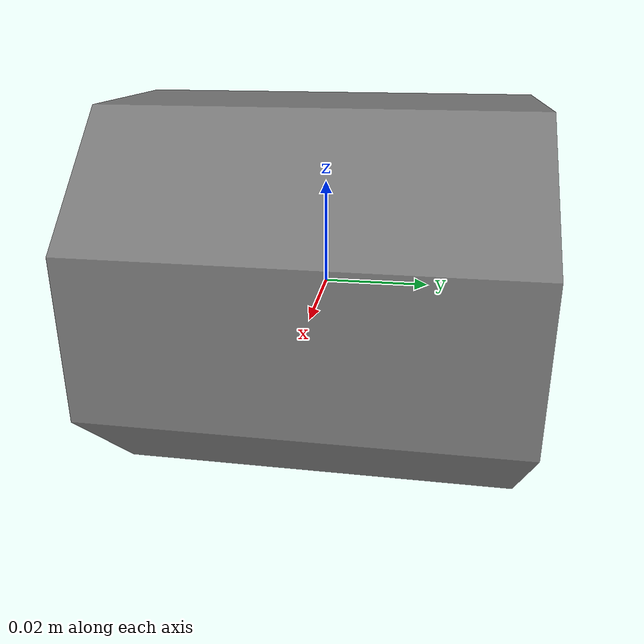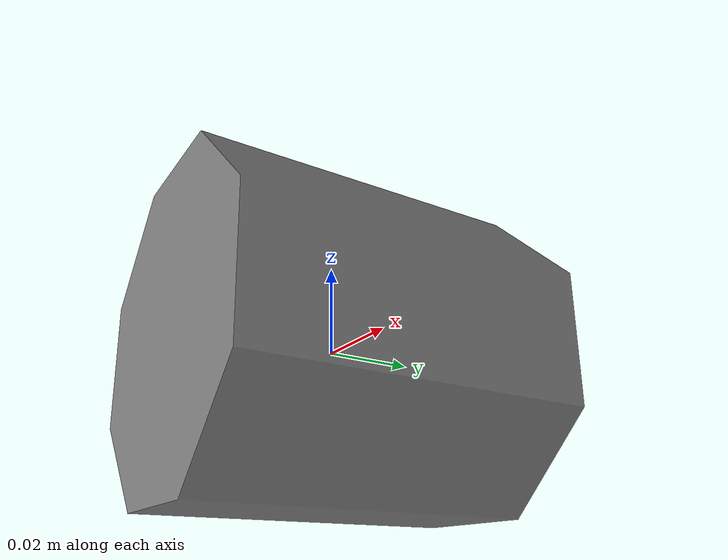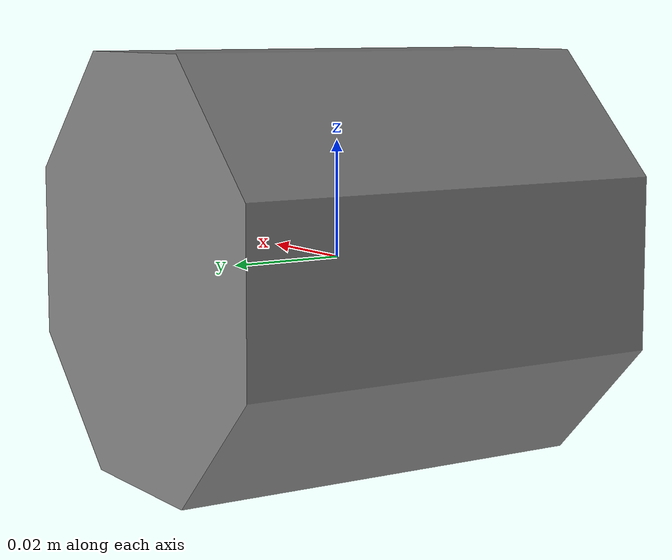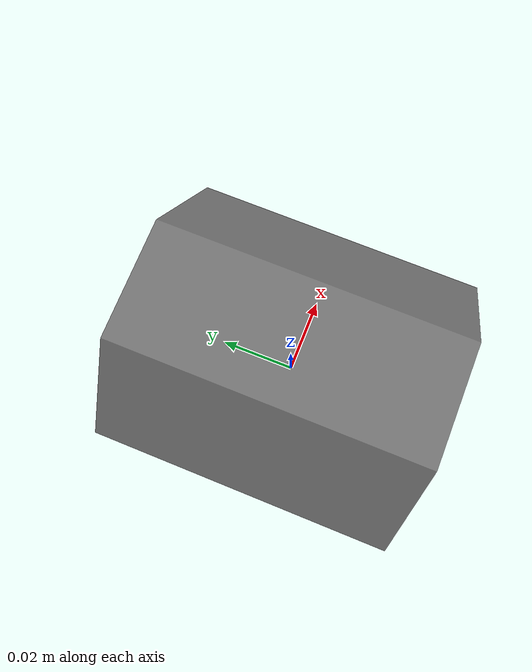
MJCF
<mujoco model="peg-hole">
	<default>
		<default class="visual">
			<geom type="mesh" contype="0" conaffinity="0"/>
		</default>
		<default class="collision">
			<geom type="mesh" rgba="0.5 0.5 0.5 0.0" density="100"/>
		</default>
	</default>
	<asset>
		<mesh name="Circle_hole_visual" file="meshes/Circle_octagonal_bottle.obj" scale="1.00 1.00 1.00"/>
		<mesh name="Circle_hole_0" file="meshes/collision_meshes/Circle_octagonal_bottle_decomp_0.obj" scale="1.00 1.00 1.00"/>
		<mesh name="Circle_hole_1" file="meshes/collision_meshes/Circle_octagonal_bottle_decomp_1.obj" scale="1.00 1.00 1.00"/>
		<mesh name="Circle_hole_2" file="meshes/collision_meshes/Circle_octagonal_bottle_decomp_2.obj" scale="1.00 1.00 1.00"/>
		<mesh name="Circle_hole_3" file="meshes/collision_meshes/Circle_octagonal_bottle_decomp_3.obj" scale="1.00 1.00 1.00"/>
		<mesh name="Circle_hole_4" file="meshes/collision_meshes/Circle_octagonal_bottle_decomp_4.obj" scale="1.00 1.00 1.00"/>
		<mesh name="Circle_hole_5" file="meshes/collision_meshes/Circle_octagonal_bottle_decomp_5.obj" scale="1.00 1.00 1.00"/>
		<mesh name="Circle_hole_6" file="meshes/collision_meshes/Circle_octagonal_bottle_decomp_6.obj" scale="1.00 1.00 1.00"/>
		<mesh name="Circle_hole_7" file="meshes/collision_meshes/Circle_octagonal_bottle_decomp_7.obj" scale="1.00 1.00 1.00"/>
		<mesh name="Circle_hole_8" file="meshes/collision_meshes/Circle_octagonal_bottle_decomp_8.obj" scale="1.00 1.00 1.00"/>
		<mesh name="Circle_hole_9" file="meshes/collision_meshes/Circle_octagonal_bottle_decomp_9.obj" scale="1.00 1.00 1.00"/>
		<mesh name="Circle_hole_10" file="meshes/collision_meshes/Circle_octagonal_bottle_decomp_10.obj" scale="1.00 1.00 1.00"/>
		<mesh name="Circle_hole_11" file="meshes/collision_meshes/Circle_octagonal_bottle_decomp_11.obj" scale="1.00 1.00 1.00"/>
		<mesh name="Circle_hole_12" file="meshes/collision_meshes/Circle_octagonal_bottle_decomp_12.obj" scale="1.00 1.00 1.00"/>
		<mesh name="Circle_hole_13" file="meshes/collision_meshes/Circle_octagonal_bottle_decomp_13.obj" scale="1.00 1.00 1.00"/>
		<mesh name="Circle_hole_14" file="meshes/collision_meshes/Circle_octagonal_bottle_decomp_14.obj" scale="1.00 1.00 1.00"/>
		<mesh name="Circle_hole_15" file="meshes/collision_meshes/Circle_octagonal_bottle_decomp_15.obj" scale="1.00 1.00 1.00"/>
		<mesh name="Circle_hole_16" file="meshes/collision_meshes/Circle_octagonal_bottle_decomp_16.obj" scale="1.00 1.00 1.00"/>
		<mesh name="Circle_hole_17" file="meshes/collision_meshes/Circle_octagonal_bottle_decomp_17.obj" scale="1.00 1.00 1.00"/>
		<mesh name="Circle_hole_18" file="meshes/collision_meshes/Circle_octagonal_bottle_decomp_18.obj" scale="1.00 1.00 1.00"/>
	</asset>
	<worldbody>
		<body name="Circle_hole">
			<body name="object">
				<geom name="Circle_hole_0" class="collision" friction="0.01 0.3 0.0001" mesh="Circle_hole_0" group="0"/>
				<geom name="Circle_hole_1" class="collision" friction="0.01 0.3 0.0001" mesh="Circle_hole_1" group="0"/>
				<geom name="Circle_hole_2" class="collision" friction="0.01 0.3 0.0001" mesh="Circle_hole_2" group="0"/>
				<geom name="Circle_hole_3" class="collision" friction="0.01 0.3 0.0001" mesh="Circle_hole_3" group="0"/>
				<geom name="Circle_hole_4" class="collision" friction="0.01 0.3 0.0001" mesh="Circle_hole_4" group="0"/>
				<geom name="Circle_hole_5" class="collision" friction="0.01 0.3 0.0001" mesh="Circle_hole_5" group="0"/>
				<geom name="Circle_hole_6" class="collision" friction="0.01 0.3 0.0001" mesh="Circle_hole_6" group="0"/>
				<geom name="Circle_hole_7" class="collision" friction="0.01 0.3 0.0001" mesh="Circle_hole_7" group="0"/>
				<geom name="Circle_hole_8" class="collision" friction="0.01 0.3 0.0001" mesh="Circle_hole_8" group="0"/>
				<geom name="Circle_hole_9" class="collision" friction="0.01 0.3 0.0001" mesh="Circle_hole_9" group="0"/>
				<geom name="Circle_hole_10" class="collision" friction="0.01 0.3 0.0001" mesh="Circle_hole_10" group="0"/>
				<geom name="Circle_hole_11" class="collision" friction="0.01 0.3 0.0001" mesh="Circle_hole_11" group="0"/>
				<geom name="Circle_hole_12" class="collision" friction="0.01 0.3 0.0001" mesh="Circle_hole_12" group="0"/>
				<geom name="Circle_hole_13" class="collision" friction="0.01 0.3 0.0001" mesh="Circle_hole_13" group="0"/>
				<geom name="Circle_hole_14" class="collision" friction="0.01 0.3 0.0001" mesh="Circle_hole_14" group="0"/>
				<geom name="Circle_hole_15" class="collision" friction="0.01 0.3 0.0001" mesh="Circle_hole_15" group="0"/>
				<geom name="Circle_hole_16" class="collision" friction="0.01 0.3 0.0001" mesh="Circle_hole_16" group="0"/>
				<geom name="Circle_hole_17" class="collision" friction="0.01 0.3 0.0001" mesh="Circle_hole_17" group="0"/>
				<geom name="Circle_hole_18" class="collision" friction="0.01 0.3 0.0001" mesh="Circle_hole_18" group="0"/>
				<geom name="Circle_hole_visual" class="visual" mesh="Circle_hole_visual" group="1"/>
			</body>
			<site rgba="0 0 0 0" size="0.005" pos="0 0 0" name="bottom_site"/>
			<site rgba="0 0 0 0" size="0.005" pos="0 0 0" name="top_site"/>
			<site rgba="0 0 0 0" size="0.005" pos="0 0 0" name="horizontal_radius_site"/>
		</body>
	</worldbody>
</mujoco>
